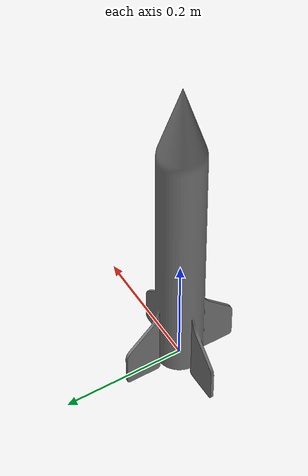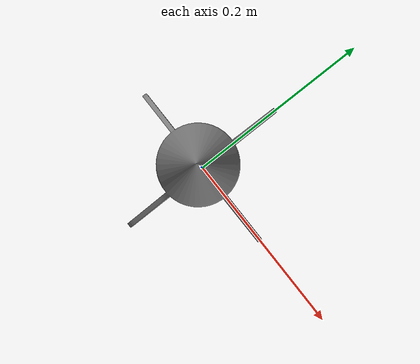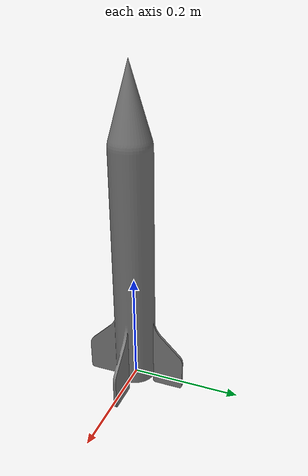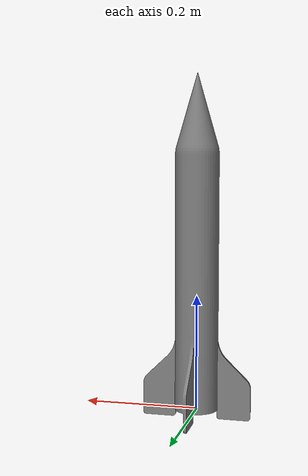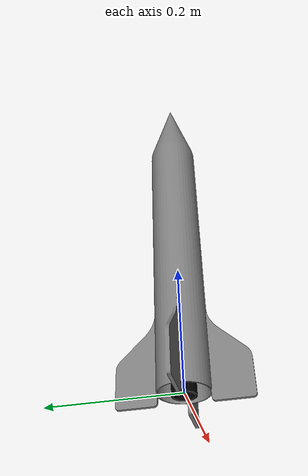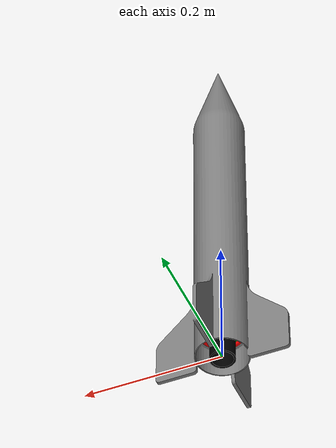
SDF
<?xml version='1.0' encoding='utf-8'?>
<sdf version="1.7">
    <model name="Rocket">
        <link name="Engine">
            <pose>-1.8125641257895325e-06 1.8200196286874416e-06 0.001000000000000065 2.08166817117217e-17 -1.3775145847668239e-15 -4.998541688550586e-16</pose>
            <inertial>
                <mass>0.028723555949169397</mass>
                <pose>1.0477786611538601e-07 1.3183886769936052e-17 0.04749999999999999 0.0 0.0 0.0</pose>
                <inertia>
                    <ixx>3.0018095318649617e-05</ixx>
                    <iyy>2.9875643757119133e-05</iyy>
                    <izz>7.689725480938257e-06</izz>
                    <ixy>-7.016928802798183e-20</ixy>
                    <iyz>5.2515857155459e-20</iyz>
                    <ixz>2.073962851021028e-20</ixz>
                </inertia>
            </inertial>
            <visual name="Engine_visual">
                <geometry>
                    <mesh>
                        <uri>/home/andreas/Rocketsim_ros2_ws/src/gz_simulator/models/RocketV1/meshes/Engine.stl</uri>
                        <scale>0.001 0.001 0.001</scale>
                    </mesh>
                </geometry>
				<material>
					<ambient>0.0 0.0 0.0 1</ambient>
					<diffuse>0.0 0.0 0.0 1</diffuse>
					<specular>0.2 0.2 0.2 1</specular>
					<emissive>0.0 0.0 0.0 1</emissive>
				</material>
            </visual>
            <collision name="Engine_collision">
                <geometry>
                    <mesh>
                        <uri>/home/andreas/Rocketsim_ros2_ws/src/gz_simulator/models/RocketV1/meshes/Engine.stl</uri>
                        <scale>0.001 0.001 0.001</scale>
                    </mesh>
                </geometry>
            </collision>
        </link>
        <link name="Y_ring">
            <pose>-1.687538997430238e-16 0.0 0.09600000000000002 3.141592653589793 -1.3877787807814368e-15 0.0</pose>
            <inertial>
                <mass>0.009179454460001072</mass>
                <pose>4.9705116017453964e-17 -4.1873023370798933e-17 0.04749999999999996 0.0 0.0 0.0</pose>
                <inertia>
                    <ixx>4.521624107367099e-06</ixx>
                    <iyy>4.299072763747112e-06</iyy>
                    <izz>8.60829275530661e-06</izz>
                    <ixy>-1.3977840968503092e-20</ixy>
                    <iyz>-8.275283514347903e-21</iyz>
                    <ixz>5.992851809083267e-20</ixz>
                </inertia>
            </inertial>
            <visual name="Y_ring_visual">
                <geometry>
                    <mesh>
                        <uri>/home/andreas/Rocketsim_ros2_ws/src/gz_simulator/models/RocketV1/meshes/Y_ring.stl</uri>
                        <scale>0.001 0.001 0.001</scale>
                    </mesh>
                </geometry>
				<material>
					<ambient>0.3 0.0 0.0 1</ambient>
					<diffuse>1.0 0.0 0.0 1</diffuse>
					<specular>0.5 0.5 0.5 1</specular>
					<emissive>0.0 0.0 0.0 1</emissive>
				</material>
            </visual>
            <collision name="Y_ring_collision">
                <geometry>
                    <mesh>
                        <uri>/home/andreas/Rocketsim_ros2_ws/src/gz_simulator/models/RocketV1/meshes/Y_ring.stl</uri>
                        <scale>0.001 0.001 0.001</scale>
                    </mesh>
                </geometry>
            </collision>
        </link>
        <link name="X_ring">
            <pose>-1.8125641258454062e-06 3.8302694349567904e-17 0.09599999999999997 -3.141592653589793 -1.3878317218657018e-15 -1.516034298079449e-18</pose>
            <inertial>
                <mass>0.007180821369474257</mass>
                <pose>-1.1054017879291704e-16 -1.1552980952400499e-14 0.04749999999999999 0.0 0.0 0.0</pose>
                <inertia>
                    <ixx>1.8572623606356447e-06</ixx>
                    <iyy>2.24343902820501e-06</iyy>
                    <izz>3.939550138972454e-06</izz>
                    <ixy>-2.189087697208224e-21</ixy>
                    <iyz>2.697291816163817e-21</iyz>
                    <ixz>-3.447493625890917e-20</ixz>
                </inertia>
            </inertial>
            <visual name="X_ring_visual">
                <geometry>
                    <mesh>
                        <uri>/home/andreas/Rocketsim_ros2_ws/src/gz_simulator/models/RocketV1/meshes/X_ring.stl</uri>
                        <scale>0.001 0.001 0.001</scale>
                    </mesh>
                </geometry>
				<material>
					<ambient>0.0 0.3 0.0 1</ambient>
					<diffuse>0.0 1.0 0.0 1</diffuse>
					<specular>0.5 0.5 0.5 1</specular>
					<emissive>0.0 0.0 0.0 1</emissive>
				</material>
            </visual>
            <collision name="X_ring_collision">
                <geometry>
                    <mesh>
                        <uri>/home/andreas/Rocketsim_ros2_ws/src/gz_simulator/models/RocketV1/meshes/X_ring.stl</uri>
                        <scale>0.001 0.001 0.001</scale>
                    </mesh>
                </geometry>
            </collision>
        </link>
        <link name="base_link">
            <pose>0.0 0.0 0.0 0.0 -0.0 0.0</pose>
            <inertial>
                <mass>0.31307930825765756</mass>
                <pose>-5.4303436734196704e-17 -1.4434207819684956e-17 0.1698642327163812 0.0 0.0 0.0</pose>
                <inertia>
                    <ixx>0.008533126785563871</ixx>
                    <iyy>0.008533126785564565</iyy>
                    <izz>0.0007356323820817046</izz>
                    <ixy>3.626616460789906e-20</ixy>
                    <iyz>3.492334229750196e-18</iyz>
                    <ixz>4.883325827676547e-18</ixz>
                </inertia>
            </inertial>
            <visual name="base_link_visual">
            	<geometry>
                    <mesh>
                        <uri>/home/andreas/Rocketsim_ros2_ws/src/gz_simulator/models/RocketV1/meshes/base_link.stl</uri>
                        <scale>0.001 0.001 0.001</scale>
                    </mesh>
                </geometry>
				<material>
					<ambient>0.3 0.3 0.3 1</ambient>
					<diffuse>0.5 0.5 0.5 1</diffuse>
					<specular>0.5 0.5 0.5 1</specular>
					<emissive>0.0 0.0 0.0 1</emissive>
				</material>
            </visual>
            <collision name="base_link_collision">
                <geometry>
                    <mesh>
                        <uri>/home/andreas/Rocketsim_ros2_ws/src/gz_simulator/models/RocketV1/meshes/base_link.stl</uri>
                        <scale>0.001 0.001 0.001</scale>
                    </mesh>
                </geometry>
            </collision>

	    <sensor name="imu_sensor" type="imu">
 	    	<pose>0 0 0 1.5708 0 -1.5708</pose>
  		<update_rate>100.0</update_rate>
  		<always_on>true</always_on>
  		<visualize>true</visualize>
  		<imu>
    		    <angular_velocity>
			<x>
      		    	    <noise type="gaussian">
				<mean>0.0</mean>
        		    	<stddev>0.0</stddev>
                		<bias_mean>0.0</bias_mean>
                		<bias_stddev>0.0</bias_stddev>
                		<dynamic_bias_stddev>0.0</dynamic_bias_stddev>
                           	<dynamic_bias_correlation_time>400.0</dynamic_bias_correlation_time>
                		<precision>0.0</precision>
			    </noise>
			</x>
			<y>
      		    	    <noise type="gaussian">
				<mean>0.0</mean>
        		    	<stddev>0.0</stddev>
                		<bias_mean>0.0</bias_mean>
                		<bias_stddev>0.0</bias_stddev>
                		<dynamic_bias_stddev>0.0</dynamic_bias_stddev>
                           	<dynamic_bias_correlation_time>400.0</dynamic_bias_correlation_time>
                		<precision>0.0</precision>
			    </noise>
			</y>
			<z>
      		    	    <noise type="gaussian">
				<mean>0.0</mean>
        		    	<stddev>0.0</stddev>
                		<bias_mean>0.0</bias_mean>
                		<bias_stddev>0.0</bias_stddev>
                		<dynamic_bias_stddev>0.0</dynamic_bias_stddev>
                           	<dynamic_bias_correlation_time>400.0</dynamic_bias_correlation_time>
                		<precision>0.0</precision>
			    </noise>
			</z>
    		    </angular_velocity>
    	            <linear_acceleration>
      		        <x>
      		    	    <noise type="gaussian">
				<mean>0.0</mean>
        		    	<stddev>0.0</stddev>
                		<bias_mean>0.0</bias_mean>
                		<bias_stddev>0.0</bias_stddev>
                		<dynamic_bias_stddev>0.0</dynamic_bias_stddev>
                           	<dynamic_bias_correlation_time>400.0</dynamic_bias_correlation_time>
                		<precision>0.0</precision>
			    </noise>
			</x>
			<y>
      		    	    <noise type="gaussian">
				<mean>0.0</mean>
        		    	<stddev>0.0</stddev>
                		<bias_mean>0.0</bias_mean>
                		<bias_stddev>0.0</bias_stddev>
                		<dynamic_bias_stddev>0.0</dynamic_bias_stddev>
                           	<dynamic_bias_correlation_time>400.0</dynamic_bias_correlation_time>
                		<precision>0.0</precision>
			    </noise>
			</y>
			<z>
      		    	    <noise type="gaussian">
				<mean>0.0</mean>
        		    	<stddev>0.0</stddev>
                		<bias_mean>0.0</bias_mean>
                		<bias_stddev>0.0</bias_stddev>
                		<dynamic_bias_stddev>0.0</dynamic_bias_stddev>
                           	<dynamic_bias_correlation_time>400.0</dynamic_bias_correlation_time>
                		<precision>0.0</precision>
			    </noise>
			</z>
    		    </linear_acceleration>
  		</imu>

  		<plugin
                    filename="gz-sim-imu-system"
                    name="gz::sim::systems::Imu">
                    <topic>Imu</topic>
       	  	    <publish_offset>true</publish_offset>
  		</plugin>
            </sensor>

            <sensor name="magnetometer_sensor" type="magnetometer">
    	        <pose>0 0 0 1.5708 0 -1.5708</pose>
    		<update_rate>100.0</update_rate>
    		<always_on>true</always_on>
    		<visualize>true</visualize>
    		<magnetometer>
        	    <x>
                        <noise type="gaussian">
                            <mean>0.0</mean>
			    <bias_mean>0.0</bias_mean>
                            <stddev>0.0</stddev>
                        </noise>
                    </x>

		    <y>
                        <noise type="gaussian">
                            <mean>0.0</mean>
			    <bias_mean>0.0</bias_mean>
                            <stddev>0.0</stddev>
                        </noise>
                    </y>

                    <z>
                        <noise type="gaussian">
                            <mean>0.0</mean>
			    <bias_mean>0.0</bias_mean>
                            <stddev>0.0</stddev>
                        </noise>
                    </z>
        	</magnetometer>
    		<plugin
        	    filename="gz-sim-magnetometer-system"
        	    name="gz::sim::systems::Magnetometer">
        	    <topic>Magnetometer</topic>
    		</plugin>
	    </sensor>

	    <sensor name="air_pressure" type="air_pressure">
    	        <pose>0 0 0 0 0 0</pose>
    		<update_rate>100.0</update_rate>
    		<always_on>true</always_on>
    		<visualize>true</visualize>
    		<air_pressure>
		    <pressure>
        	        <noise type="gaussian">
            	            <mean>0.00000008</mean>
			    <stddev>0.0</stddev>
          	        </noise>
		    </pressure>
		    <reference_altitude>0</reference_altitude>
    		</air_pressure>
    		<plugin
       		    filename="gz-sim-air-pressure-system"
        	    name="gz::sim::systems::AirPressure">
        	    <topic>Air_pressure</topic>
    		</plugin>
	    </sensor>

        </link>
        <joint name="base_link_Rigid-5" type="fixed">
            <pose>9.450773497121757e-17 -1.4817228106940786e-17 0.053499999999999985 0.0 0.0 0.0</pose>
            <parent>base_link</parent>
            <child>Y_ring</child>
        </joint>
        <joint name="Y_ring_Revolute-6" type="revolute">
            <pose>-0.03250018743587429 3.856880553261303e-17 0.047499999999999966 0.0 0.0 0.0</pose>
            <parent>Y_ring</parent>
            <child>X_ring</child>
            <axis>
                <xyz expressed_in="__model__">1.0 0.0 0.0</xyz>
                <limit>
                    <lower>-0.174533</lower>
                    <upper>0.174533</upper>
                </limit>
            </axis>
        </joint>
        <joint name="X_ring_Revolute-7" type="revolute">
            <pose>-1.874358741575317e-07 0.0250001799803713 0.04749999999999991 0.0 0.0 0.0</pose>
            <parent>X_ring</parent>
            <child>Engine</child>
            <axis>
                <xyz expressed_in="__model__">-0.0 1.0 0.0</xyz>
                <limit>
                    <lower>-0.174533</lower>
                    <upper>0.174533</upper>
                </limit>
            </axis>
        </joint>

	<plugin
		filename="gz-sim-joint-position-controller-system"
		name="gz::sim::systems::JointPositionController">
		<joint_name>X_ring_Revolute-7</joint_name>
		<topic>X_ring</topic>
		<p_gain>1.0</p_gain>
		<i_gain>0.001</i_gain>
		<d_gain>0.01</d_gain>
		<i_max>0.5</i_max>
		<i_min>-0.5</i_min>
		<cmd_max>1.0</cmd_max>
		<cmd_min>-1.0</cmd_min>
	</plugin>

	<plugin
		filename="gz-sim-joint-position-controller-system"
		name="gz::sim::systems::JointPositionController">
		<joint_name>Y_ring_Revolute-6</joint_name>
		<topic>Y_ring</topic>
		<p_gain>1.0</p_gain>
		<i_gain>0.001</i_gain>
		<d_gain>0.01</d_gain>
		<i_max>0.5</i_max>
		<i_min>-0.5</i_min>
		<cmd_max>1.0</cmd_max>
		<cmd_min>-1.0</cmd_min>
	</plugin>

    <plugin
      filename="gz-sim-pose-publisher-system"
      name="gz::sim::systems::PosePublisher">
      <publish_link_pose>true</publish_link_pose>
      <publish_visual_pose>false</publish_visual_pose>
      <publish_collision_pose>false</publish_collision_pose>
      <publish_sensor_pose>false</publish_sensor_pose>
      <publish_model_pose>true</publish_model_pose>
      <publish_nested_model_pose>false</publish_nested_model_pose>
      <use_pose_vector_msg>false</use_pose_vector_msg>
      <update_frequency>30</update_frequency>
      <static_publisher>false</static_publisher>
      <static_update_frequency>1</static_update_frequency>
    </plugin>

    </model>
</sdf>
